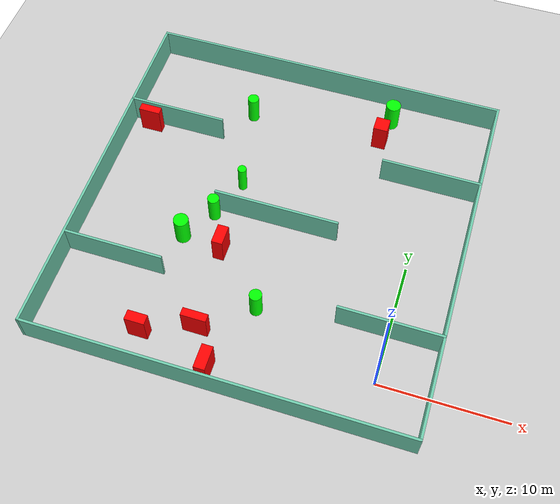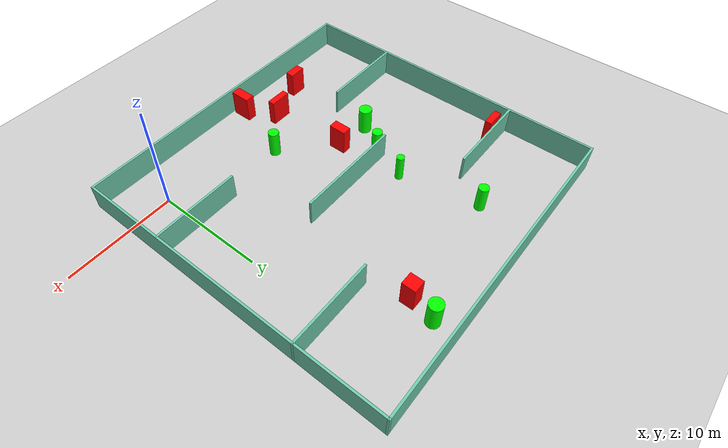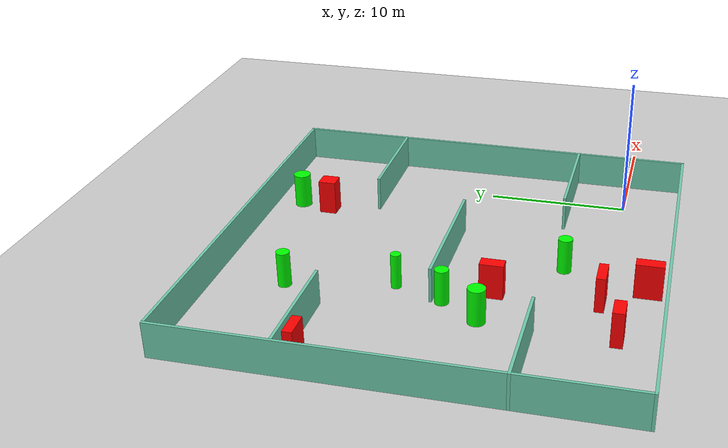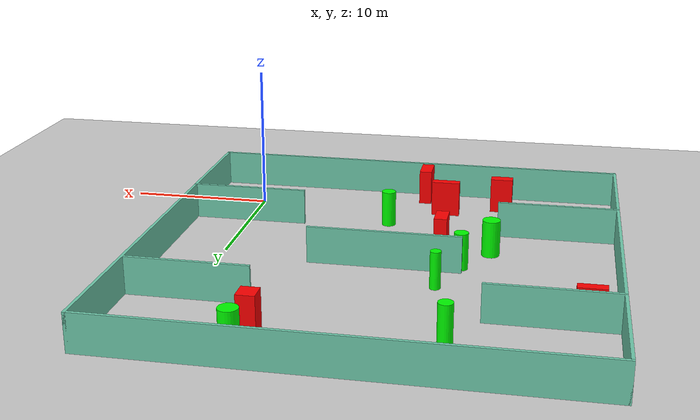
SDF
<sdf version="1.7">
 <world name="default">
  <light name="sun" type="directional">
   <pose>0 0 10 0 -0 0</pose>
   <diffuse>0.8 0.8 0.8 1</diffuse>
   <specular>0.2 0.2 0.2 1</specular>
   <attenuation>
    <range>1000</range>
    <constant>0.9</constant>
    <linear>0.01</linear>
    <quadratic>0.001</quadratic>
   </attenuation>
   <direction>-0.5 0.1 -0.9</direction>
   <spot><inner_angle>0</inner_angle><outer_angle>0</outer_angle><falloff>0</falloff></spot>
  </light>
  <model name="ground_plane">
   <static>1</static>
   <link name="link">
    <collision name="collision">
     <geometry><plane><normal>0 0 1</normal><size>100 100</size></plane></geometry>
     <surface>
      <contact><collide_bitmask>65535</collide_bitmask></contact>
      <friction><ode><mu>100</mu><mu2>50</mu2></ode></friction>
     </surface>
    </collision>
    <visual name="visual">
     <cast_shadows>0</cast_shadows>
     <geometry><plane><normal>0 0 1</normal><size>100 100</size></plane></geometry>
     <material>
      <script><uri>file://media/materials/scripts/gazebo.material</uri><name>Gazebo/Grey</name></script>
     </material>
    </visual>
   </link>
  </model>
  <gravity>0 0 -9.8</gravity>
  <magnetic_field>6e-06 2.3e-05 -4.2e-05</magnetic_field>
  <atmosphere type="adiabatic"/>
  <physics type="ode">
   <max_step_size>0.001</max_step_size>
   <real_time_factor>1</real_time_factor>
   <real_time_update_rate>1000</real_time_update_rate>
  </physics>
  <scene><ambient>0.4 0.4 0.4 1</ambient><background>0.7 0.7 0.7 1</background><shadows>1</shadows></scene>
  <spherical_coordinates>
   <surface_model>EARTH_WGS84</surface_model>
   <latitude_deg>0</latitude_deg>
   <longitude_deg>0</longitude_deg>
   <elevation>0</elevation>
   <heading_deg>0</heading_deg>
  </spherical_coordinates>
  <model name="my_base_walls">
   <link name="Wall_10">
    <collision name="Wall_10_Collision">
     <geometry><box><size>8.2 0.2 2.5</size></box></geometry>
     <pose>0 0 1.25 0 -0 0</pose>
    </collision>
    <visual name="Wall_10_Visual">
     <pose>0 0 1.25 0 -0 0</pose>
     <geometry><box><size>8.2 0.2 2.5</size></box></geometry>
     <material>
      <script><uri>file://media/materials/scripts/gazebo.material</uri><name>Gazebo/Grey</name></script>
      <ambient>0.435294 0.796078 0.67451 1</ambient>
     </material>
     <meta><layer>0</layer></meta>
    </visual>
    <pose>-11 -7 0 0 -0 0</pose>
   </link>
   <link name="Wall_12">
    <collision name="Wall_12_Collision">
     <geometry><box><size>8.2 0.2 2.5</size></box></geometry>
     <pose>0 0 1.25 0 -0 0</pose>
    </collision>
    <visual name="Wall_12_Visual">
     <pose>0 0 1.25 0 -0 0</pose>
     <geometry><box><size>8.2 0.2 2.5</size></box></geometry>
     <material>
      <script><uri>file://media/materials/scripts/gazebo.material</uri><name>Gazebo/Grey</name></script>
      <ambient>0.435294 0.796078 0.67451 1</ambient>
     </material>
     <meta><layer>0</layer></meta>
    </visual>
    <pose>-11 7 0 0 -0 0</pose>
   </link>
   <link name="Wall_14">
    <collision name="Wall_14_Collision">
     <geometry><box><size>8.2 0.2 2.5</size></box></geometry>
     <pose>0 0 1.25 0 -0 0</pose>
    </collision>
    <visual name="Wall_14_Visual">
     <pose>0 0 1.25 0 -0 0</pose>
     <geometry><box><size>8.2 0.2 2.5</size></box></geometry>
     <material>
      <script><uri>file://media/materials/scripts/gazebo.material</uri><name>Gazebo/Grey</name></script>
      <ambient>0.435294 0.796078 0.67451 1</ambient>
     </material>
     <meta><layer>0</layer></meta>
    </visual>
    <pose>11 7 0 0 -0 3.14159</pose>
   </link>
   <link name="Wall_16">
    <collision name="Wall_16_Collision">
     <geometry><box><size>10.2 0.2 2.5</size></box></geometry>
     <pose>0 0 1.25 0 -0 0</pose>
    </collision>
    <visual name="Wall_16_Visual">
     <pose>0 0 1.25 0 -0 0</pose>
     <geometry><box><size>10.2 0.2 2.5</size></box></geometry>
     <material>
      <script><uri>file://media/materials/scripts/gazebo.material</uri><name>Gazebo/Grey</name></script>
      <ambient>0.435294 0.796078 0.67451 1</ambient>
     </material>
     <meta><layer>0</layer></meta>
    </visual>
    <pose>0 0 0 0 -0 3.14159</pose>
   </link>
   <link name="Wall_2">
    <collision name="Wall_2_Collision">
     <geometry><box><size>30.2 0.2 2.5</size></box></geometry>
     <pose>0 0 1.25 0 -0 0</pose>
    </collision>
    <visual name="Wall_2_Visual">
     <pose>0 0 1.25 0 -0 0</pose>
     <geometry><box><size>30.2 0.2 2.5</size></box></geometry>
     <material>
      <script><uri>file://media/materials/scripts/gazebo.material</uri><name>Gazebo/Grey</name></script>
      <ambient>0.435294 0.796078 0.67451 1</ambient>
     </material>
     <meta><layer>0</layer></meta>
    </visual>
    <pose>0 -15 0 0 -0 3.14159</pose>
   </link>
   <link name="Wall_3">
    <collision name="Wall_3_Collision">
     <geometry><box><size>30.2 0.2 2.5</size></box></geometry>
     <pose>0 0 1.25 0 -0 0</pose>
    </collision>
    <visual name="Wall_3_Visual">
     <pose>0 0 1.25 0 -0 0</pose>
     <geometry><box><size>30.2 0.2 2.5</size></box></geometry>
     <material>
      <script><uri>file://media/materials/scripts/gazebo.material</uri><name>Gazebo/Grey</name></script>
      <ambient>0.435294 0.796078 0.67451 1</ambient>
     </material>
     <meta><layer>0</layer></meta>
    </visual>
    <pose>-15 0 0 0 -0 1.5708</pose>
   </link>
   <link name="Wall_4">
    <collision name="Wall_4_Collision">
     <geometry><box><size>30.2 0.2 2.5</size></box></geometry>
     <pose>0 0 1.25 0 -0 0</pose>
    </collision>
    <visual name="Wall_4_Visual">
     <pose>0 0 1.25 0 -0 0</pose>
     <geometry><box><size>30.2 0.2 2.5</size></box></geometry>
     <material>
      <script><uri>file://media/materials/scripts/gazebo.material</uri><name>Gazebo/Grey</name></script>
      <ambient>0.435294 0.796078 0.67451 1</ambient>
     </material>
     <meta><layer>0</layer></meta>
    </visual>
    <pose>0 15 0 0 -0 0</pose>
   </link>
   <link name="Wall_6">
    <collision name="Wall_6_Collision">
     <geometry><box><size>30.2 0.2 2.5</size></box></geometry>
     <pose>0 0 1.25 0 -0 0</pose>
    </collision>
    <visual name="Wall_6_Visual">
     <pose>0 0 1.25 0 -0 0</pose>
     <geometry><box><size>30.2 0.2 2.5</size></box></geometry>
     <material>
      <script><uri>file://media/materials/scripts/gazebo.material</uri><name>Gazebo/Grey</name></script>
      <ambient>0.435294 0.796078 0.67451 1</ambient>
     </material>
     <meta><layer>0</layer></meta>
    </visual>
    <pose>15 0 0 0 -0 1.5708</pose>
   </link>
   <link name="Wall_8">
    <collision name="Wall_8_Collision">
     <geometry><box><size>8.2 0.2 2.5</size></box></geometry>
     <pose>0 0 1.25 0 -0 0</pose>
    </collision>
    <visual name="Wall_8_Visual">
     <pose>0 0 1.25 0 -0 0</pose>
     <geometry><box><size>8.2 0.2 2.5</size></box></geometry>
     <material>
      <script><uri>file://media/materials/scripts/gazebo.material</uri><name>Gazebo/Grey</name></script>
      <ambient>0.435294 0.796078 0.67451 1</ambient>
     </material>
     <meta><layer>0</layer></meta>
    </visual>
    <pose>11 -7 0 0 -0 3.14159</pose>
   </link>
   <static>1</static>
   <pose>-11 11 0 0 -0 0</pose>
  </model>
  <model name="cylinder1">
   <static>1</static>
   <link name="link">
    <inertial>
     <mass>1</mass>
     <inertia><ixx>0.5</ixx><ixy>0</ixy><ixz>0</ixz><iyy>0.5</iyy><iyz>0</iyz><izz>1</izz></inertia>
    </inertial>
    <collision name="collision">
     <geometry><cylinder><radius>0.6182245220694231</radius><length>2.5</length></cylinder></geometry>
    </collision>
    <visual name="visual">
     <geometry><cylinder><radius>0.6182245220694231</radius><length>2.5</length></cylinder></geometry>
     <material>
      <ambient>0 1 0 1</ambient>
      <diffuse>0 1 0 1</diffuse>
      <specular>0.1 0.1 0.1 1</specular>
      <emissive>0 0 0 0</emissive>
     </material>
    </visual>
   </link>
   <pose>-4.558522613499566 23.875950463138075 1.25 0 0 0</pose>
  </model>
  <model name="cylinder2">
   <static>1</static>
   <link name="link">
    <inertial>
     <mass>1</mass>
     <inertia><ixx>0.5</ixx><ixy>0</ixy><ixz>0</ixz><iyy>0.5</iyy><iyz>0</iyz><izz>1</izz></inertia>
    </inertial>
    <collision name="collision">
     <geometry><cylinder><radius>0.35493743988496557</radius><length>2.5</length></cylinder></geometry>
    </collision>
    <visual name="visual">
     <geometry><cylinder><radius>0.35493743988496557</radius><length>2.5</length></cylinder></geometry>
     <material>
      <ambient>0 1 0 1</ambient>
      <diffuse>0 1 0 1</diffuse>
      <specular>0.1 0.1 0.1 1</specular>
      <emissive>0 0 0 0</emissive>
     </material>
    </visual>
   </link>
   <pose>-14.708620833288846 13.677997939805039 1.25 0 0 0</pose>
  </model>
  <model name="cylinder3">
   <static>1</static>
   <link name="link">
    <inertial>
     <mass>1</mass>
     <inertia><ixx>0.5</ixx><ixy>0</ixy><ixz>0</ixz><iyy>0.5</iyy><iyz>0</iyz><izz>1</izz></inertia>
    </inertial>
    <collision name="collision">
     <geometry><cylinder><radius>0.604490701808915</radius><length>2.5</length></cylinder></geometry>
    </collision>
    <visual name="visual">
     <geometry><cylinder><radius>0.604490701808915</radius><length>2.5</length></cylinder></geometry>
     <material>
      <ambient>0 1 0 1</ambient>
      <diffuse>0 1 0 1</diffuse>
      <specular>0.1 0.1 0.1 1</specular>
      <emissive>0 0 0 0</emissive>
     </material>
    </visual>
   </link>
   <pose>-17.698368116410947 7.599672453115476 1.25 0 0 0</pose>
  </model>
  <model name="cylinder4">
   <static>1</static>
   <link name="link">
    <inertial>
     <mass>1</mass>
     <inertia><ixx>0.5</ixx><ixy>0</ixy><ixz>0</ixz><iyy>0.5</iyy><iyz>0</iyz><izz>1</izz></inertia>
    </inertial>
    <collision name="collision">
     <geometry><cylinder><radius>0.47396795663158897</radius><length>2.5</length></cylinder></geometry>
    </collision>
    <visual name="visual">
     <geometry><cylinder><radius>0.47396795663158897</radius><length>2.5</length></cylinder></geometry>
     <material>
      <ambient>0 1 0 1</ambient>
      <diffuse>0 1 0 1</diffuse>
      <specular>0.1 0.1 0.1 1</specular>
      <emissive>0 0 0 0</emissive>
     </material>
    </visual>
   </link>
   <pose>-15.962635454301566 10.260555497749642 1.25 0 0 0</pose>
  </model>
  <model name="cylinder5">
   <static>1</static>
   <link name="link">
    <inertial>
     <mass>1</mass>
     <inertia><ixx>0.5</ixx><ixy>0</ixy><ixz>0</ixz><iyy>0.5</iyy><iyz>0</iyz><izz>1</izz></inertia>
    </inertial>
    <collision name="collision">
     <geometry><cylinder><radius>0.49374524020149035</radius><length>2.5</length></cylinder></geometry>
    </collision>
    <visual name="visual">
     <geometry><cylinder><radius>0.49374524020149035</radius><length>2.5</length></cylinder></geometry>
     <material>
      <ambient>0 1 0 1</ambient>
      <diffuse>0 1 0 1</diffuse>
      <specular>0.1 0.1 0.1 1</specular>
      <emissive>0 0 0 0</emissive>
     </material>
    </visual>
   </link>
   <pose>-10.074184708684754 3.0955589570207502 1.25 0 0 0</pose>
  </model>
  <model name="cylinder6">
   <static>1</static>
   <link name="link">
    <inertial>
     <mass>1</mass>
     <inertia><ixx>0.5</ixx><ixy>0</ixy><ixz>0</ixz><iyy>0.5</iyy><iyz>0</iyz><izz>1</izz></inertia>
    </inertial>
    <collision name="collision">
     <geometry><cylinder><radius>0.4637046821132571</radius><length>2.5</length></cylinder></geometry>
    </collision>
    <visual name="visual">
     <geometry><cylinder><radius>0.4637046821132571</radius><length>2.5</length></cylinder></geometry>
     <material>
      <ambient>0 1 0 1</ambient>
      <diffuse>0 1 0 1</diffuse>
      <specular>0.1 0.1 0.1 1</specular>
      <emissive>0 0 0 0</emissive>
     </material>
    </visual>
   </link>
   <pose>-16.158115749470415 20.99364781024309 1.25 0 0 0</pose>
  </model>
  <model name="box1">
   <static>1</static>
   <link name="link">
    <inertial>
     <mass>1</mass>
     <inertia><ixx>0.083</ixx><ixy>0</ixy><ixz>0</ixz><iyy>0.083</iyy><iyz>0</iyz><izz>0.083</izz></inertia>
    </inertial>
    <collision name="collision">
     <geometry><box><size>1.1789891721743866 1.2467501763287618 2.5</size></box></geometry>
    </collision>
    <visual name="visual">
     <geometry><box><size>1.1789891721743866 1.2467501763287618 2.5</size></box></geometry>
     <material>
      <ambient>1 0 0 1</ambient>
      <diffuse>1 0 0 1</diffuse>
      <specular>0.1 0.1 0.1 1</specular>
      <emissive>0 0 0 0</emissive>
     </material>
    </visual>
    <sensor name="my_contact" type="contact">
     <contact><collision>box_collision</collision><topic>__default_topic__</topic></contact>
    </sensor>
   </link>
   <pose>-5.008571634983856 21.5872454849662 1.25 0 0 0</pose>
  </model>
  <model name="box2">
   <static>1</static>
   <link name="link">
    <inertial>
     <mass>1</mass>
     <inertia><ixx>0.083</ixx><ixy>0</ixy><ixz>0</ixz><iyy>0.083</iyy><iyz>0</iyz><izz>0.083</izz></inertia>
    </inertial>
    <collision name="collision">
     <geometry><box><size>1.5723268716271286 0.7904707195651652 2.5</size></box></geometry>
    </collision>
    <visual name="visual">
     <geometry><box><size>1.5723268716271286 0.7904707195651652 2.5</size></box></geometry>
     <material>
      <ambient>1 0 0 1</ambient>
      <diffuse>1 0 0 1</diffuse>
      <specular>0.1 0.1 0.1 1</specular>
      <emissive>0 0 0 0</emissive>
     </material>
    </visual>
    <sensor name="my_contact" type="contact">
     <contact><collision>box_collision</collision><topic>__default_topic__</topic></contact>
    </sensor>
   </link>
   <pose>-17.82327067260093 -1.2733647493018907 1.25 0 0 0</pose>
  </model>
  <model name="box3">
   <static>1</static>
   <link name="link">
    <inertial>
     <mass>1</mass>
     <inertia><ixx>0.083</ixx><ixy>0</ixy><ixz>0</ixz><iyy>0.083</iyy><iyz>0</iyz><izz>0.083</izz></inertia>
    </inertial>
    <collision name="collision">
     <geometry><box><size>1.9961493695780606 0.6325469040130748 2.5</size></box></geometry>
    </collision>
    <visual name="visual">
     <geometry><box><size>1.9961493695780606 0.6325469040130748 2.5</size></box></geometry>
     <material>
      <ambient>1 0 0 1</ambient>
      <diffuse>1 0 0 1</diffuse>
      <specular>0.1 0.1 0.1 1</specular>
      <emissive>0 0 0 0</emissive>
     </material>
    </visual>
    <sensor name="my_contact" type="contact">
     <contact><collision>box_collision</collision><topic>__default_topic__</topic></contact>
    </sensor>
   </link>
   <pose>-13.83937015843456 0.20044659445303648 1.25 0 0 0</pose>
  </model>
  <model name="box4">
   <static>1</static>
   <link name="link">
    <inertial>
     <mass>1</mass>
     <inertia><ixx>0.083</ixx><ixy>0</ixy><ixz>0</ixz><iyy>0.083</iyy><iyz>0</iyz><izz>0.083</izz></inertia>
    </inertial>
    <collision name="collision">
     <geometry><box><size>0.8771663264743577 1.891140959746196 2.5</size></box></geometry>
    </collision>
    <visual name="visual">
     <geometry><box><size>0.8771663264743577 1.891140959746196 2.5</size></box></geometry>
     <material>
      <ambient>1 0 0 1</ambient>
      <diffuse>1 0 0 1</diffuse>
      <specular>0.1 0.1 0.1 1</specular>
      <emissive>0 0 0 0</emissive>
     </material>
    </visual>
    <sensor name="my_contact" type="contact">
     <contact><collision>box_collision</collision><topic>__default_topic__</topic></contact>
    </sensor>
   </link>
   <pose>-12.068127824888144 -2.7198525957918687 1.25 0 0 0</pose>
  </model>
  <model name="box5">
   <static>1</static>
   <link name="link">
    <inertial>
     <mass>1</mass>
     <inertia><ixx>0.083</ixx><ixy>0</ixy><ixz>0</ixz><iyy>0.083</iyy><iyz>0</iyz><izz>0.083</izz></inertia>
    </inertial>
    <collision name="collision">
     <geometry><box><size>0.8771572649562216 1.6269543541642628 2.5</size></box></geometry>
    </collision>
    <visual name="visual">
     <geometry><box><size>0.8771572649562216 1.6269543541642628 2.5</size></box></geometry>
     <material>
      <ambient>1 0 0 1</ambient>
      <diffuse>1 0 0 1</diffuse>
      <specular>0.1 0.1 0.1 1</specular>
      <emissive>0 0 0 0</emissive>
     </material>
    </visual>
    <sensor name="my_contact" type="contact">
     <contact><collision>box_collision</collision><topic>__default_topic__</topic></contact>
    </sensor>
   </link>
   <pose>-14.337897870737548 7.275744131053516 1.25 0 0 0</pose>
  </model>
  <model name="box6">
   <static>1</static>
   <link name="link">
    <inertial>
     <mass>1</mass>
     <inertia><ixx>0.083</ixx><ixy>0</ixy><ixz>0</ixz><iyy>0.083</iyy><iyz>0</iyz><izz>0.083</izz></inertia>
    </inertial>
    <collision name="collision">
     <geometry><box><size>1.7849421891139972 0.6510330281103889 2.5</size></box></geometry>
    </collision>
    <visual name="visual">
     <geometry><box><size>1.7849421891139972 0.6510330281103889 2.5</size></box></geometry>
     <material>
      <ambient>1 0 0 1</ambient>
      <diffuse>1 0 0 1</diffuse>
      <specular>0.1 0.1 0.1 1</specular>
      <emissive>0 0 0 0</emissive>
     </material>
    </visual>
    <sensor name="my_contact" type="contact">
     <contact><collision>box_collision</collision><topic>__default_topic__</topic></contact>
    </sensor>
   </link>
   <pose>-24.154194428201706 17.324187572173155 1.25 0 0 0</pose>
  </model>
 </world>
</sdf>
